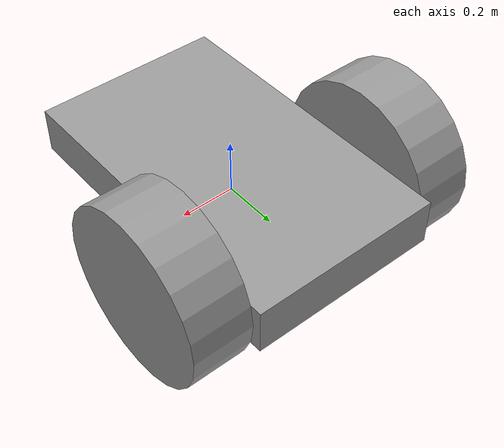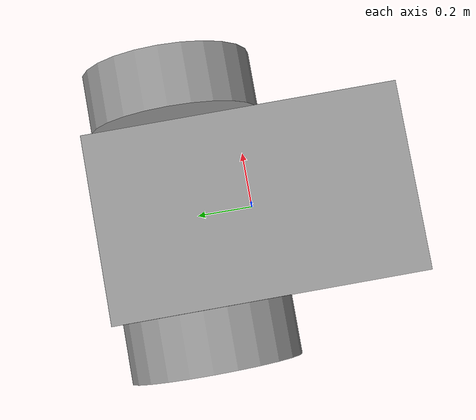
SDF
<?xml version='1.0'?>
<sdf version='1.7'>
  <model name='CW2_robot'>
  <arg name="robot_scale" default="0.5"/>
    <link name='link_0'>
      <inertial>
        <mass>0.132002</mass>
        <inertia>
          <ixx>0.0146984</ixx>
          <ixy>0</ixy>
          <ixz>0</ixz>
          <iyy>0.00551078</iyy>
          <iyz>0</iyz>
          <izz>0.0195892</izz>
        </inertia>
        <pose>0 0 0 0 -0 0</pose>
      </inertial>
      <pose>-0 -0.012869 0.059608 0 -0 0</pose>
      <visual name='visual'>
        <pose>0 0 0 0 -0 0</pose>
        <geometry>
          <box>
            <size>0.687602 1.14369 0.16786</size>
          </box>
        </geometry>
        <material>
          <lighting>1</lighting>
          <script>
            <uri>file://media/materials/scripts/gazebo.material</uri>
            <name>Gazebo/Grey</name>
          </script>
          <shader type='pixel'/>
          <emissive>0 0 0 1</emissive>
        </material>
        <transparency>0</transparency>
        <cast_shadows>1</cast_shadows>
      </visual>
      <collision name='collision'>
        <laser_retro>0</laser_retro>
        <max_contacts>10</max_contacts>
        <pose>0 0 0 0 -0 0</pose>
        <geometry>
          <box>
            <size>0.687602 1.14369 0.16786</size>
          </box>
        </geometry>
        <surface>
          <friction>
            <ode>
              <mu>1</mu>
              <mu2>1</mu2>
              <fdir1>0 0 0</fdir1>
              <slip1>0</slip1>
              <slip2>0</slip2>
            </ode>
            <torsional>
              <coefficient>1</coefficient>
              <patch_radius>0</patch_radius>
              <surface_radius>0</surface_radius>
              <use_patch_radius>1</use_patch_radius>
              <ode>
                <slip>0</slip>
              </ode>
            </torsional>
          </friction>
          <bounce>
            <restitution_coefficient>0</restitution_coefficient>
            <threshold>1e+06</threshold>
          </bounce>
          <contact>
            <collide_without_contact>0</collide_without_contact>
            <collide_without_contact_bitmask>1</collide_without_contact_bitmask>
            <collide_bitmask>1</collide_bitmask>
            <ode>
              <soft_cfm>0</soft_cfm>
              <soft_erp>0.2</soft_erp>
              <kp>1e+13</kp>
              <kd>1</kd>
              <max_vel>0.01</max_vel>
              <min_depth>0</min_depth>
            </ode>
            <bullet>
              <split_impulse>1</split_impulse>
              <split_impulse_penetration_threshold>-0.01</split_impulse_penetration_threshold>
              <soft_cfm>0</soft_cfm>
              <soft_erp>0.2</soft_erp>
              <kp>1e+13</kp>
              <kd>1</kd>
            </bullet>
          </contact>
        </surface>
      </collision>
    </link>
    <link name='link_1'>
      <inertial>
        <mass>0.0794976</mass>
        <inertia>
          <ixx>0.00216479</ixx>
          <ixy>0</ixy>
          <ixz>0</ixz>
          <iyy>0.00216479</iyy>
          <iyz>0</iyz>
          <izz>0.00373763</izz>
        </inertia>
        <pose>0 0 0 0 -0 0</pose>
      </inertial>
      <pose>0.449488 0.221541 0.059608 3.14159 1.57079 3.14159</pose>
      <gravity>1</gravity>
      <self_collide>0</self_collide>
      <kinematic>0</kinematic>
      <enable_wind>0</enable_wind>
      <visual name='visual'>
        <pose>0 0 0 0 -0 0</pose>
        <geometry>
          <cylinder>
            <radius>0.306645</radius>
            <length>0.21137</length>
          </cylinder>
        </geometry>
        <material>
          <lighting>1</lighting>
          <script>
            <uri>file://media/materials/scripts/gazebo.material</uri>
            <name>Gazebo/Grey</name>
          </script>
          <shader type='pixel'>
            <normal_map>__default__</normal_map>
          </shader>
          <ambient>0.3 0.3 0.3 1</ambient>
          <diffuse>0.7 0.7 0.7 1</diffuse>
          <specular>0.01 0.01 0.01 1</specular>
          <emissive>0 0 0 1</emissive>
        </material>
        <transparency>0</transparency>
        <cast_shadows>1</cast_shadows>
      </visual>
      <collision name='collision'>
        <laser_retro>0</laser_retro>
        <max_contacts>10</max_contacts>
        <pose>0 0 0 0 -0 0</pose>
        <geometry>
          <cylinder>
            <radius>0.306645</radius>
            <length>0.21137</length>
          </cylinder>
        </geometry>
        <surface>
          <friction>
            <ode>
              <mu>1</mu>
              <mu2>1</mu2>
              <fdir1>0 0 0</fdir1>
              <slip1>0</slip1>
              <slip2>0</slip2>
            </ode>
            <torsional>
              <coefficient>1</coefficient>
              <patch_radius>0</patch_radius>
              <surface_radius>0</surface_radius>
              <use_patch_radius>1</use_patch_radius>
              <ode>
                <slip>0</slip>
              </ode>
            </torsional>
          </friction>
          <bounce>
            <restitution_coefficient>0</restitution_coefficient>
            <threshold>1e+06</threshold>
          </bounce>
          <contact>
            <collide_without_contact>0</collide_without_contact>
            <collide_without_contact_bitmask>1</collide_without_contact_bitmask>
            <collide_bitmask>1</collide_bitmask>
            <ode>
              <soft_cfm>0</soft_cfm>
              <soft_erp>0.2</soft_erp>
              <kp>1e+13</kp>
              <kd>1</kd>
              <max_vel>0.01</max_vel>
              <min_depth>0</min_depth>
            </ode>
            <bullet>
              <split_impulse>1</split_impulse>
              <split_impulse_penetration_threshold>-0.01</split_impulse_penetration_threshold>
              <soft_cfm>0</soft_cfm>
              <soft_erp>0.2</soft_erp>
              <kp>1e+13</kp>
              <kd>1</kd>
            </bullet>
          </contact>
        </surface>
      </collision>
    </link>
    <link name='link_1_clone'>
      <inertial>
        <mass>0.0794976</mass>
        <inertia>
          <ixx>0.00216479</ixx>
          <ixy>0</ixy>
          <ixz>0</ixz>
          <iyy>0.00216479</iyy>
          <iyz>0</iyz>
          <izz>0.00373763</izz>
        </inertia>
        <pose>0 0 0 0 -0 0</pose>
      </inertial>
      <pose>-0.449488 0.221541 0.059608 3.14159 1.57079 3.14159</pose>
      <gravity>1</gravity>
      <self_collide>0</self_collide>
      <kinematic>0</kinematic>
      <enable_wind>0</enable_wind>
      <visual name='visual'>
        <pose>0 0 0 0 -0 0</pose>
        <geometry>
          <cylinder>
            <radius>0.306645</radius>
            <length>0.21137</length>
          </cylinder>
        </geometry>
        <material>
          <lighting>1</lighting>
          <script>
            <uri>file://media/materials/scripts/gazebo.material</uri>
            <name>Gazebo/Grey</name>
          </script>
          <shader type='pixel'>
            <normal_map>__default__</normal_map>
          </shader>
          <ambient>0.3 0.3 0.3 1</ambient>
          <diffuse>0.7 0.7 0.7 1</diffuse>
          <specular>0.01 0.01 0.01 1</specular>
          <emissive>0 0 0 1</emissive>
        </material>
        <transparency>0</transparency>
        <cast_shadows>1</cast_shadows>
      </visual>
      <collision name='collision'>
        <laser_retro>0</laser_retro>
        <max_contacts>10</max_contacts>
        <pose>0 0 0 0 -0 0</pose>
        <geometry>
          <cylinder>
            <radius>0.306645</radius>
            <length>0.21137</length>
          </cylinder>
        </geometry>
        <surface>
          <friction>
            <ode>
              <mu>1</mu>
              <mu2>1</mu2>
              <fdir1>0 0 0</fdir1>
              <slip1>0</slip1>
              <slip2>0</slip2>
            </ode>
            <torsional>
              <coefficient>1</coefficient>
              <patch_radius>0</patch_radius>
              <surface_radius>0</surface_radius>
              <use_patch_radius>1</use_patch_radius>
              <ode>
                <slip>0</slip>
              </ode>
            </torsional>
          </friction>
          <bounce>
            <restitution_coefficient>0</restitution_coefficient>
            <threshold>1e+06</threshold>
          </bounce>
          <contact>
            <collide_without_contact>0</collide_without_contact>
            <collide_without_contact_bitmask>1</collide_without_contact_bitmask>
            <collide_bitmask>1</collide_bitmask>
            <ode>
              <soft_cfm>0</soft_cfm>
              <soft_erp>0.2</soft_erp>
              <kp>1e+13</kp>
              <kd>1</kd>
              <max_vel>0.01</max_vel>
              <min_depth>0</min_depth>
            </ode>
            <bullet>
              <split_impulse>1</split_impulse>
              <split_impulse_penetration_threshold>-0.01</split_impulse_penetration_threshold>
              <soft_cfm>0</soft_cfm>
              <soft_erp>0.2</soft_erp>
              <kp>1e+13</kp>
              <kd>1</kd>
            </bullet>
          </contact>
        </surface>
      </collision>
    </link>
    <link name='link_2'>
      <inertial>
        <mass>0.029505</mass>
        <inertia>
          <ixx>0.000281721</ixx>
          <ixy>0</ixy>
          <ixz>0</ixz>
          <iyy>0.000281721</iyy>
          <iyz>0</iyz>
          <izz>0.000281721</izz>
        </inertia>
        <pose>0 0 0 0 -0 0</pose>
      </inertial>
      <pose>-0 -0.392869 -0.178823 0 -0 0</pose>
      <visual name='visual'>
        <pose>0 0 0 0 -0 0</pose>
        <geometry>
          <sphere>
            <radius>0.154501</radius>
          </sphere>
        </geometry>
        <material>
          <lighting>1</lighting>
          <script>
            <uri>file://media/materials/scripts/gazebo.material</uri>
            <name>Gazebo/Grey</name>
          </script>
          <shader type='pixel'/>
          <emissive>0 0 0 1</emissive>
        </material>
        <transparency>0</transparency>
        <cast_shadows>1</cast_shadows>
      </visual>
      <collision name='collision'>
        <laser_retro>0</laser_retro>
        <max_contacts>10</max_contacts>
        <pose>0 0 0 0 -0 0</pose>
        <geometry>
          <sphere>
            <radius>0.154501</radius>
          </sphere>
        </geometry>
        <surface>
          <friction>
            <ode>
              <mu>1</mu>
              <mu2>1</mu2>
              <fdir1>0 0 0</fdir1>
              <slip1>0</slip1>
              <slip2>0</slip2>
            </ode>
            <torsional>
              <coefficient>1</coefficient>
              <patch_radius>0</patch_radius>
              <surface_radius>0</surface_radius>
              <use_patch_radius>1</use_patch_radius>
              <ode>
                <slip>0</slip>
              </ode>
            </torsional>
          </friction>
          <bounce>
            <restitution_coefficient>0</restitution_coefficient>
            <threshold>1e+06</threshold>
          </bounce>
          <contact>
            <collide_without_contact>0</collide_without_contact>
            <collide_without_contact_bitmask>1</collide_without_contact_bitmask>
            <collide_bitmask>1</collide_bitmask>
            <ode>
              <soft_cfm>0</soft_cfm>
              <soft_erp>0.2</soft_erp>
              <kp>1e+13</kp>
              <kd>1</kd>
              <max_vel>0.01</max_vel>
              <min_depth>0</min_depth>
            </ode>
            <bullet>
              <split_impulse>1</split_impulse>
              <split_impulse_penetration_threshold>-0.01</split_impulse_penetration_threshold>
              <soft_cfm>0</soft_cfm>
              <soft_erp>0.2</soft_erp>
              <kp>1e+13</kp>
              <kd>1</kd>
            </bullet>
          </contact>
        </surface>
      </collision>
    </link>
    <joint name='link_0_JOINT_0' type='revolute'>
      <parent>link_0</parent>
      <child>link_1</child>
      <pose>0 0 0 0 -0 0</pose>
      <axis>
        <xyz>1 0 0</xyz>
        <limit>
          <lower>-1.79769e+308</lower>
          <upper>1.79769e+308</upper>
          <effort>-1</effort>
          <velocity>-1</velocity>
        </limit>
        <dynamics>
          <spring_reference>0</spring_reference>
          <spring_stiffness>0</spring_stiffness>
          <damping>0</damping>
        </dynamics>
      </axis>
      <physics>
        <ode>
          <limit>
            <cfm>0</cfm>
            <erp>0.2</erp>
          </limit>
          <suspension>
            <cfm>0</cfm>
            <erp>0.2</erp>
          </suspension>
        </ode>
      </physics>
    </joint>
    <joint name='link_0_JOINT_1' type='revolute'>
      <parent>link_0</parent>
      <child>link_1_clone</child>
      <pose>0 0 0 0 -0 0</pose>
      <axis>
        <xyz>1 0 0</xyz>
        <limit>
          <lower>-1.79769e+308</lower>
          <upper>1.79769e+308</upper>
          <effort>-1</effort>
          <velocity>-1</velocity>
        </limit>
        <dynamics>
          <spring_reference>0</spring_reference>
          <spring_stiffness>0</spring_stiffness>
          <damping>0</damping>
        </dynamics>
      </axis>
      <physics>
        <ode>
          <limit>
            <cfm>0</cfm>
            <erp>0.2</erp>
          </limit>
          <suspension>
            <cfm>0</cfm>
            <erp>0.2</erp>
          </suspension>
        </ode>
      </physics>
    </joint>
    <joint name='link_0_JOINT_2' type='ball'>
      <parent>link_0</parent>
      <child>link_2</child>
      <pose>0 0 0 0 -0 0</pose>
      <physics>
        <ode>
          <limit>
            <cfm>0</cfm>
            <erp>0.2</erp>
          </limit>
          <suspension>
            <cfm>0</cfm>
            <erp>0.2</erp>
          </suspension>
        </ode>
      </physics>
    </joint>
    <static>0</static>
    <allow_auto_disable>1</allow_auto_disable>
  </model>
</sdf>
